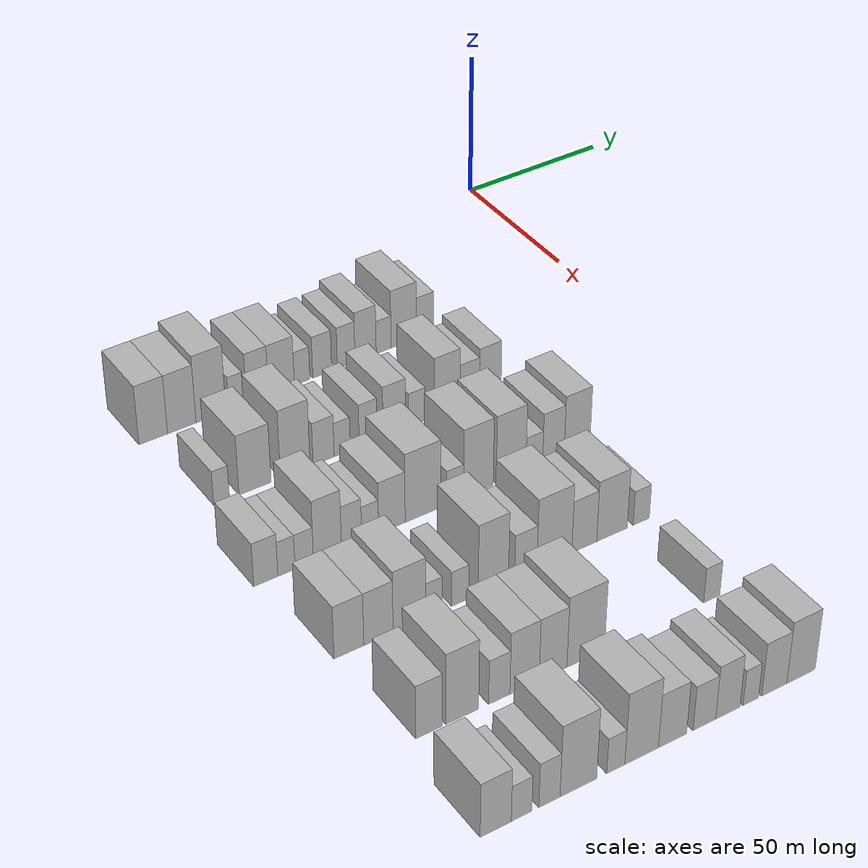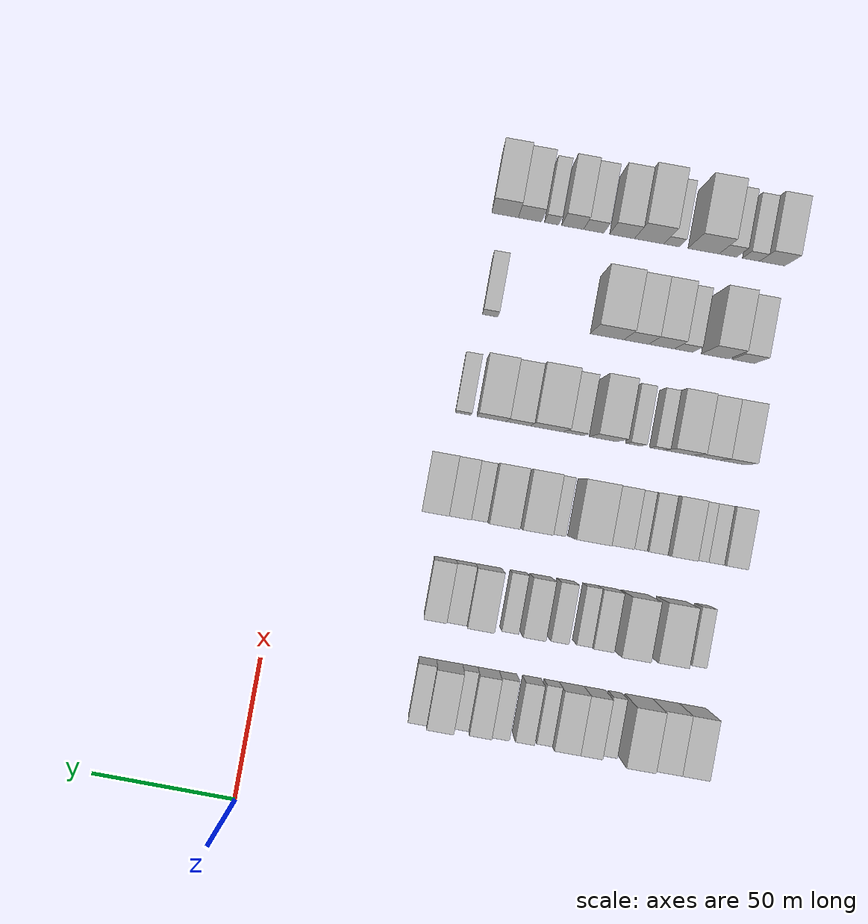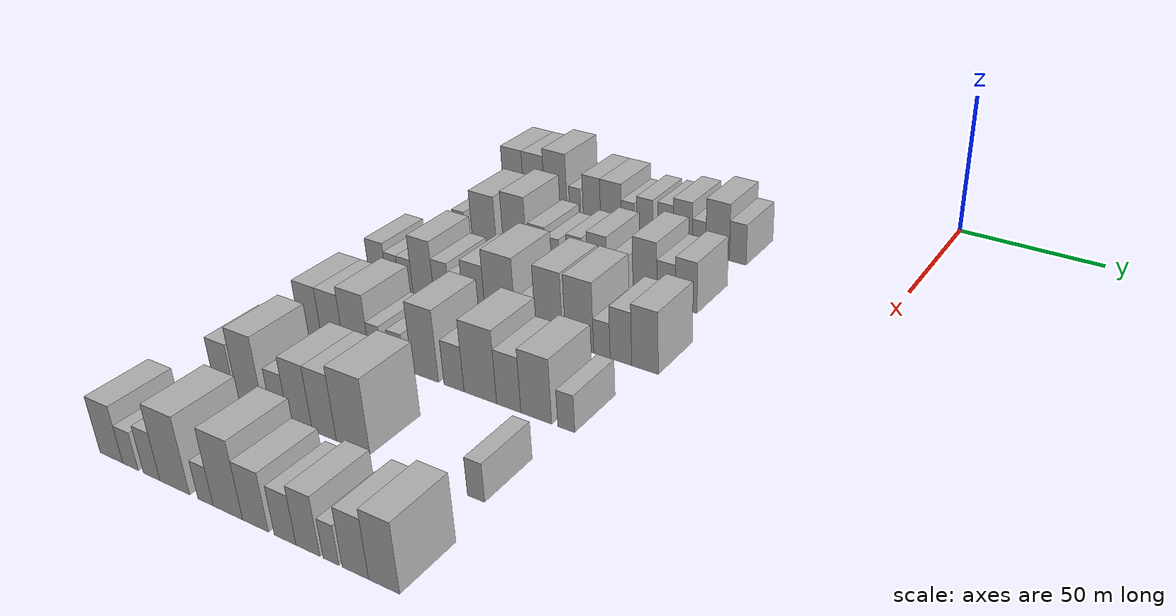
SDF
<sdf version="1.6">
 <world name="default">
  <model name="building_46">
   <static>1</static>
   <pose>50.0000 -149.4197 0 0.000000 0.000000 0.000000</pose>
   <link name="link">
    <pose>0 0 10.50 0 0 0</pose>
    <collision name="collision"><geometry><box><size>20.0000 9.1974 21.0000</size></box></geometry></collision>
    <visual name="visual">
     <cast_shadows>0</cast_shadows>
     <geometry><box><size>20.0000 9.1974 21.0000</size></box></geometry>
     <material>
      <script>
       <uri>model://HANNAS_wall/materials/scripts</uri>
       <uri>model://HANNAS_wall/materials/textures</uri>
       <name>vrc/HANNAS_wall</name>
      </script>
     </material>
    </visual>
   </link>
  </model>
  <model name="building_47">
   <static>1</static>
   <pose>50.0000 -140.1782 0 0.000000 0.000000 0.000000</pose>
   <link name="link">
    <pose>0 0 10.50 0 0 0</pose>
    <collision name="collision"><geometry><box><size>20.0000 9.2855 21.0000</size></box></geometry></collision>
    <visual name="visual">
     <cast_shadows>0</cast_shadows>
     <geometry><box><size>20.0000 9.2855 21.0000</size></box></geometry>
     <material>
      <script>
       <uri>model://HANNAS_wall/materials/scripts</uri>
       <uri>model://HANNAS_wall/materials/textures</uri>
       <name>vrc/HANNAS_wall</name>
      </script>
     </material>
    </visual>
   </link>
  </model>
  <model name="building_48">
   <static>1</static>
   <pose>50.0000 -130.6213 0 0.000000 0.000000 0.000000</pose>
   <link name="link">
    <pose>0 0 12.00 0 0 0</pose>
    <collision name="collision"><geometry><box><size>20.0000 9.8284 24.0000</size></box></geometry></collision>
    <visual name="visual">
     <cast_shadows>0</cast_shadows>
     <geometry><box><size>20.0000 9.8284 24.0000</size></box></geometry>
     <material>
      <script>
       <uri>model://HANNAS_wall/materials/scripts</uri>
       <uri>model://HANNAS_wall/materials/textures</uri>
       <name>vrc/HANNAS_wall</name>
      </script>
     </material>
    </visual>
   </link>
  </model>
  <model name="building_49">
   <static>1</static>
   <pose>50.0000 -122.2751 0 0.000000 0.000000 0.000000</pose>
   <link name="link">
    <pose>0 0 6.00 0 0 0</pose>
    <collision name="collision"><geometry><box><size>20.0000 4.8638 12.0000</size></box></geometry></collision>
    <visual name="visual">
     <cast_shadows>0</cast_shadows>
     <geometry><box><size>20.0000 4.8638 12.0000</size></box></geometry>
     <material>
      <script>
       <uri>model://HANNAS_wall/materials/scripts</uri>
       <uri>model://HANNAS_wall/materials/textures</uri>
       <name>vrc/HANNAS_wall</name>
      </script>
     </material>
    </visual>
   </link>
  </model>
  <model name="building_50">
   <static>1</static>
   <pose>50.0000 -115.1461 0 0.000000 0.000000 0.000000</pose>
   <link name="link">
    <pose>0 0 9.00 0 0 0</pose>
    <collision name="collision"><geometry><box><size>20.0000 7.3941 18.0000</size></box></geometry></collision>
    <visual name="visual">
     <cast_shadows>0</cast_shadows>
     <geometry><box><size>20.0000 7.3941 18.0000</size></box></geometry>
     <material>
      <script>
       <uri>model://HANNAS_wall/materials/scripts</uri>
       <uri>model://HANNAS_wall/materials/textures</uri>
       <name>vrc/HANNAS_wall</name>
      </script>
     </material>
    </visual>
   </link>
  </model>
  <model name="building_51">
   <static>1</static>
   <pose>50.0000 -107.0595 0 0.000000 0.000000 0.000000</pose>
   <link name="link">
    <pose>0 0 9.00 0 0 0</pose>
    <collision name="collision"><geometry><box><size>20.0000 8.7791 18.0000</size></box></geometry></collision>
    <visual name="visual">
     <cast_shadows>0</cast_shadows>
     <geometry><box><size>20.0000 8.7791 18.0000</size></box></geometry>
     <material>
      <script>
       <uri>model://HANNAS_wall/materials/scripts</uri>
       <uri>model://HANNAS_wall/materials/textures</uri>
       <name>vrc/HANNAS_wall</name>
      </script>
     </material>
    </visual>
   </link>
  </model>
  <model name="building_52">
   <static>1</static>
   <pose>50.0000 -100.0026 0 0.000000 0.000000 0.000000</pose>
   <link name="link">
    <pose>0 0 6.00 0 0 0</pose>
    <collision name="collision"><geometry><box><size>20.0000 5.3347 12.0000</size></box></geometry></collision>
    <visual name="visual">
     <cast_shadows>0</cast_shadows>
     <geometry><box><size>20.0000 5.3347 12.0000</size></box></geometry>
     <material>
      <script>
       <uri>model://HANNAS_wall/materials/scripts</uri>
       <uri>model://HANNAS_wall/materials/textures</uri>
       <name>vrc/HANNAS_wall</name>
      </script>
     </material>
    </visual>
   </link>
  </model>
  <model name="building_53">
   <static>1</static>
   <pose>50.0000 -93.0825 0 0.000000 0.000000 0.000000</pose>
   <link name="link">
    <pose>0 0 7.50 0 0 0</pose>
    <collision name="collision"><geometry><box><size>20.0000 6.5055 15.0000</size></box></geometry></collision>
    <visual name="visual">
     <cast_shadows>0</cast_shadows>
     <geometry><box><size>20.0000 6.5055 15.0000</size></box></geometry>
     <material>
      <script>
       <uri>model://HANNAS_wall/materials/scripts</uri>
       <uri>model://HANNAS_wall/materials/textures</uri>
       <name>vrc/HANNAS_wall</name>
      </script>
     </material>
    </visual>
   </link>
  </model>
  <model name="building_54">
   <static>1</static>
   <pose>50.0000 -84.7591 0 0.000000 0.000000 0.000000</pose>
   <link name="link">
    <pose>0 0 7.50 0 0 0</pose>
    <collision name="collision"><geometry><box><size>20.0000 6.1412 15.0000</size></box></geometry></collision>
    <visual name="visual">
     <cast_shadows>0</cast_shadows>
     <geometry><box><size>20.0000 6.1412 15.0000</size></box></geometry>
     <material>
      <script>
       <uri>model://HANNAS_wall/materials/scripts</uri>
       <uri>model://HANNAS_wall/materials/textures</uri>
       <name>vrc/HANNAS_wall</name>
      </script>
     </material>
    </visual>
   </link>
  </model>
  <model name="building_55">
   <static>1</static>
   <pose>50.0000 -77.9496 0 0.000000 0.000000 0.000000</pose>
   <link name="link">
    <pose>0 0 9.00 0 0 0</pose>
    <collision name="collision"><geometry><box><size>20.0000 7.4778 18.0000</size></box></geometry></collision>
    <visual name="visual">
     <cast_shadows>0</cast_shadows>
     <geometry><box><size>20.0000 7.4778 18.0000</size></box></geometry>
     <material>
      <script>
       <uri>model://HANNAS_wall/materials/scripts</uri>
       <uri>model://HANNAS_wall/materials/textures</uri>
       <name>vrc/HANNAS_wall</name>
      </script>
     </material>
    </visual>
   </link>
  </model>
  <model name="building_56">
   <static>1</static>
   <pose>50.0000 -71.5670 0 0.000000 0.000000 0.000000</pose>
   <link name="link">
    <pose>0 0 6.00 0 0 0</pose>
    <collision name="collision"><geometry><box><size>20.0000 5.2873 12.0000</size></box></geometry></collision>
    <visual name="visual">
     <cast_shadows>0</cast_shadows>
     <geometry><box><size>20.0000 5.2873 12.0000</size></box></geometry>
     <material>
      <script>
       <uri>model://HANNAS_wall/materials/scripts</uri>
       <uri>model://HANNAS_wall/materials/textures</uri>
       <name>vrc/HANNAS_wall</name>
      </script>
     </material>
    </visual>
   </link>
  </model>
  <model name="building_57">
   <static>1</static>
   <pose>50.0000 -64.4140 0 0.000000 0.000000 0.000000</pose>
   <link name="link">
    <pose>0 0 10.50 0 0 0</pose>
    <collision name="collision"><geometry><box><size>20.0000 9.0188 21.0000</size></box></geometry></collision>
    <visual name="visual">
     <cast_shadows>0</cast_shadows>
     <geometry><box><size>20.0000 9.0188 21.0000</size></box></geometry>
     <material>
      <script>
       <uri>model://HANNAS_wall/materials/scripts</uri>
       <uri>model://HANNAS_wall/materials/textures</uri>
       <name>vrc/HANNAS_wall</name>
      </script>
     </material>
    </visual>
   </link>
  </model>
  <model name="building_58">
   <static>1</static>
   <pose>50.0000 -56.7513 0 0.000000 0.000000 0.000000</pose>
   <link name="link">
    <pose>0 0 7.50 0 0 0</pose>
    <collision name="collision"><geometry><box><size>20.0000 6.3065 15.0000</size></box></geometry></collision>
    <visual name="visual">
     <cast_shadows>0</cast_shadows>
     <geometry><box><size>20.0000 6.3065 15.0000</size></box></geometry>
     <material>
      <script>
       <uri>model://HANNAS_wall/materials/scripts</uri>
       <uri>model://HANNAS_wall/materials/textures</uri>
       <name>vrc/HANNAS_wall</name>
      </script>
     </material>
    </visual>
   </link>
  </model>
  <model name="building_176">
   <static>1</static>
   <pose>85.0000 -146.3142 0 0.000000 0.000000 0.000000</pose>
   <link name="link">
    <pose>0 0 6.00 0 0 0</pose>
    <collision name="collision"><geometry><box><size>20.0000 5.0164 12.0000</size></box></geometry></collision>
    <visual name="visual">
     <cast_shadows>0</cast_shadows>
     <geometry><box><size>20.0000 5.0164 12.0000</size></box></geometry>
     <material>
      <script>
       <uri>model://HANNAS_wall/materials/scripts</uri>
       <uri>model://HANNAS_wall/materials/textures</uri>
       <name>vrc/HANNAS_wall</name>
      </script>
     </material>
    </visual>
   </link>
  </model>
  <model name="building_177">
   <static>1</static>
   <pose>85.0000 -135.6667 0 0.000000 0.000000 0.000000</pose>
   <link name="link">
    <pose>0 0 10.50 0 0 0</pose>
    <collision name="collision"><geometry><box><size>20.0000 10.2786 21.0000</size></box></geometry></collision>
    <visual name="visual">
     <cast_shadows>0</cast_shadows>
     <geometry><box><size>20.0000 10.2786 21.0000</size></box></geometry>
     <material>
      <script>
       <uri>model://HANNAS_wall/materials/scripts</uri>
       <uri>model://HANNAS_wall/materials/textures</uri>
       <name>vrc/HANNAS_wall</name>
      </script>
     </material>
    </visual>
   </link>
  </model>
  <model name="building_178">
   <static>1</static>
   <pose>85.0000 -122.6969 0 0.000000 0.000000 0.000000</pose>
   <link name="link">
    <pose>0 0 12.00 0 0 0</pose>
    <collision name="collision"><geometry><box><size>20.0000 9.6608 24.0000</size></box></geometry></collision>
    <visual name="visual">
     <cast_shadows>0</cast_shadows>
     <geometry><box><size>20.0000 9.6608 24.0000</size></box></geometry>
     <material>
      <script>
       <uri>model://HANNAS_wall/materials/scripts</uri>
       <uri>model://HANNAS_wall/materials/textures</uri>
       <name>vrc/HANNAS_wall</name>
      </script>
     </material>
    </visual>
   </link>
  </model>
  <model name="building_179">
   <static>1</static>
   <pose>85.0000 -113.3993 0 0.000000 0.000000 0.000000</pose>
   <link name="link">
    <pose>0 0 7.50 0 0 0</pose>
    <collision name="collision"><geometry><box><size>20.0000 6.9345 15.0000</size></box></geometry></collision>
    <visual name="visual">
     <cast_shadows>0</cast_shadows>
     <geometry><box><size>20.0000 6.9345 15.0000</size></box></geometry>
     <material>
      <script>
       <uri>model://HANNAS_wall/materials/scripts</uri>
       <uri>model://HANNAS_wall/materials/textures</uri>
       <name>vrc/HANNAS_wall</name>
      </script>
     </material>
    </visual>
   </link>
  </model>
  <model name="building_180">
   <static>1</static>
   <pose>85.0000 -107.2517 0 0.000000 0.000000 0.000000</pose>
   <link name="link">
    <pose>0 0 6.00 0 0 0</pose>
    <collision name="collision"><geometry><box><size>20.0000 5.3608 12.0000</size></box></geometry></collision>
    <visual name="visual">
     <cast_shadows>0</cast_shadows>
     <geometry><box><size>20.0000 5.3608 12.0000</size></box></geometry>
     <material>
      <script>
       <uri>model://HANNAS_wall/materials/scripts</uri>
       <uri>model://HANNAS_wall/materials/textures</uri>
       <name>vrc/HANNAS_wall</name>
      </script>
     </material>
    </visual>
   </link>
  </model>
  <model name="building_181">
   <static>1</static>
   <pose>85.0000 -98.5460 0 0.000000 0.000000 0.000000</pose>
   <link name="link">
    <pose>0 0 7.50 0 0 0</pose>
    <collision name="collision"><geometry><box><size>20.0000 6.0505 15.0000</size></box></geometry></collision>
    <visual name="visual">
     <cast_shadows>0</cast_shadows>
     <geometry><box><size>20.0000 6.0505 15.0000</size></box></geometry>
     <material>
      <script>
       <uri>model://HANNAS_wall/materials/scripts</uri>
       <uri>model://HANNAS_wall/materials/textures</uri>
       <name>vrc/HANNAS_wall</name>
      </script>
     </material>
    </visual>
   </link>
  </model>
  <model name="building_182">
   <static>1</static>
   <pose>85.0000 -89.7114 0 0.000000 0.000000 0.000000</pose>
   <link name="link">
    <pose>0 0 9.00 0 0 0</pose>
    <collision name="collision"><geometry><box><size>20.0000 7.6186 18.0000</size></box></geometry></collision>
    <visual name="visual">
     <cast_shadows>0</cast_shadows>
     <geometry><box><size>20.0000 7.6186 18.0000</size></box></geometry>
     <material>
      <script>
       <uri>model://HANNAS_wall/materials/scripts</uri>
       <uri>model://HANNAS_wall/materials/textures</uri>
       <name>vrc/HANNAS_wall</name>
      </script>
     </material>
    </visual>
   </link>
  </model>
  <model name="building_183">
   <static>1</static>
   <pose>85.0000 -82.0134 0 0.000000 0.000000 0.000000</pose>
   <link name="link">
    <pose>0 0 6.00 0 0 0</pose>
    <collision name="collision"><geometry><box><size>20.0000 5.7775 12.0000</size></box></geometry></collision>
    <visual name="visual">
     <cast_shadows>0</cast_shadows>
     <geometry><box><size>20.0000 5.7775 12.0000</size></box></geometry>
     <material>
      <script>
       <uri>model://HANNAS_wall/materials/scripts</uri>
       <uri>model://HANNAS_wall/materials/textures</uri>
       <name>vrc/HANNAS_wall</name>
      </script>
     </material>
    </visual>
   </link>
  </model>
  <model name="building_184">
   <static>1</static>
   <pose>85.0000 -71.6403 0 0.000000 0.000000 0.000000</pose>
   <link name="link">
    <pose>0 0 10.50 0 0 0</pose>
    <collision name="collision"><geometry><box><size>20.0000 8.9686 21.0000</size></box></geometry></collision>
    <visual name="visual">
     <cast_shadows>0</cast_shadows>
     <geometry><box><size>20.0000 8.9686 21.0000</size></box></geometry>
     <material>
      <script>
       <uri>model://HANNAS_wall/materials/scripts</uri>
       <uri>model://HANNAS_wall/materials/textures</uri>
       <name>vrc/HANNAS_wall</name>
      </script>
     </material>
    </visual>
   </link>
  </model>
  <model name="building_185">
   <static>1</static>
   <pose>85.0000 -63.7409 0 0.000000 0.000000 0.000000</pose>
   <link name="link">
    <pose>0 0 7.50 0 0 0</pose>
    <collision name="collision"><geometry><box><size>20.0000 6.8304 15.0000</size></box></geometry></collision>
    <visual name="visual">
     <cast_shadows>0</cast_shadows>
     <geometry><box><size>20.0000 6.8304 15.0000</size></box></geometry>
     <material>
      <script>
       <uri>model://HANNAS_wall/materials/scripts</uri>
       <uri>model://HANNAS_wall/materials/textures</uri>
       <name>vrc/HANNAS_wall</name>
      </script>
     </material>
    </visual>
   </link>
  </model>
  <model name="building_186">
   <static>1</static>
   <pose>85.0000 -56.4786 0 0.000000 0.000000 0.000000</pose>
   <link name="link">
    <pose>0 0 9.00 0 0 0</pose>
    <collision name="collision"><geometry><box><size>20.0000 7.6940 18.0000</size></box></geometry></collision>
    <visual name="visual">
     <cast_shadows>0</cast_shadows>
     <geometry><box><size>20.0000 7.6940 18.0000</size></box></geometry>
     <material>
      <script>
       <uri>model://HANNAS_wall/materials/scripts</uri>
       <uri>model://HANNAS_wall/materials/textures</uri>
       <name>vrc/HANNAS_wall</name>
      </script>
     </material>
    </visual>
   </link>
  </model>
  <model name="building_300">
   <static>1</static>
   <pose>120.0000 -152.1225 0 0.000000 0.000000 0.000000</pose>
   <link name="link">
    <pose>0 0 7.50 0 0 0</pose>
    <collision name="collision"><geometry><box><size>20.0000 7.3923 15.0000</size></box></geometry></collision>
    <visual name="visual">
     <cast_shadows>0</cast_shadows>
     <geometry><box><size>20.0000 7.3923 15.0000</size></box></geometry>
     <material>
      <script>
       <uri>model://HANNAS_wall/materials/scripts</uri>
       <uri>model://HANNAS_wall/materials/textures</uri>
       <name>vrc/HANNAS_wall</name>
      </script>
     </material>
    </visual>
   </link>
  </model>
  <model name="building_301">
   <static>1</static>
   <pose>120.0000 -145.7882 0 0.000000 0.000000 0.000000</pose>
   <link name="link">
    <pose>0 0 6.00 0 0 0</pose>
    <collision name="collision"><geometry><box><size>20.0000 5.2762 12.0000</size></box></geometry></collision>
    <visual name="visual">
     <cast_shadows>0</cast_shadows>
     <geometry><box><size>20.0000 5.2762 12.0000</size></box></geometry>
     <material>
      <script>
       <uri>model://HANNAS_wall/materials/scripts</uri>
       <uri>model://HANNAS_wall/materials/textures</uri>
       <name>vrc/HANNAS_wall</name>
      </script>
     </material>
    </visual>
   </link>
  </model>
  <model name="building_302">
   <static>1</static>
   <pose>120.0000 -140.2771 0 0.000000 0.000000 0.000000</pose>
   <link name="link">
    <pose>0 0 6.00 0 0 0</pose>
    <collision name="collision"><geometry><box><size>20.0000 5.7461 12.0000</size></box></geometry></collision>
    <visual name="visual">
     <cast_shadows>0</cast_shadows>
     <geometry><box><size>20.0000 5.7461 12.0000</size></box></geometry>
     <material>
      <script>
       <uri>model://HANNAS_wall/materials/scripts</uri>
       <uri>model://HANNAS_wall/materials/textures</uri>
       <name>vrc/HANNAS_wall</name>
      </script>
     </material>
    </visual>
   </link>
  </model>
  <model name="building_303">
   <static>1</static>
   <pose>120.0000 -133.0049 0 0.000000 0.000000 0.000000</pose>
   <link name="link">
    <pose>0 0 10.50 0 0 0</pose>
    <collision name="collision"><geometry><box><size>20.0000 8.7983 21.0000</size></box></geometry></collision>
    <visual name="visual">
     <cast_shadows>0</cast_shadows>
     <geometry><box><size>20.0000 8.7983 21.0000</size></box></geometry>
     <material>
      <script>
       <uri>model://HANNAS_wall/materials/scripts</uri>
       <uri>model://HANNAS_wall/materials/textures</uri>
       <name>vrc/HANNAS_wall</name>
      </script>
     </material>
    </visual>
   </link>
  </model>
  <model name="building_304">
   <static>1</static>
   <pose>120.0000 -125.4144 0 0.000000 0.000000 0.000000</pose>
   <link name="link">
    <pose>0 0 7.50 0 0 0</pose>
    <collision name="collision"><geometry><box><size>20.0000 6.3827 15.0000</size></box></geometry></collision>
    <visual name="visual">
     <cast_shadows>0</cast_shadows>
     <geometry><box><size>20.0000 6.3827 15.0000</size></box></geometry>
     <material>
      <script>
       <uri>model://HANNAS_wall/materials/scripts</uri>
       <uri>model://HANNAS_wall/materials/textures</uri>
       <name>vrc/HANNAS_wall</name>
      </script>
     </material>
    </visual>
   </link>
  </model>
  <model name="building_305">
   <static>1</static>
   <pose>120.0000 -119.4960 0 0.000000 0.000000 0.000000</pose>
   <link name="link">
    <pose>0 0 6.00 0 0 0</pose>
    <collision name="collision"><geometry><box><size>20.0000 5.4543 12.0000</size></box></geometry></collision>
    <visual name="visual">
     <cast_shadows>0</cast_shadows>
     <geometry><box><size>20.0000 5.4543 12.0000</size></box></geometry>
     <material>
      <script>
       <uri>model://HANNAS_wall/materials/scripts</uri>
       <uri>model://HANNAS_wall/materials/textures</uri>
       <name>vrc/HANNAS_wall</name>
      </script>
     </material>
    </visual>
   </link>
  </model>
  <model name="building_306">
   <static>1</static>
   <pose>120.0000 -112.4906 0 0.000000 0.000000 0.000000</pose>
   <link name="link">
    <pose>0 0 9.00 0 0 0</pose>
    <collision name="collision"><geometry><box><size>20.0000 8.5564 18.0000</size></box></geometry></collision>
    <visual name="visual">
     <cast_shadows>0</cast_shadows>
     <geometry><box><size>20.0000 8.5564 18.0000</size></box></geometry>
     <material>
      <script>
       <uri>model://HANNAS_wall/materials/scripts</uri>
       <uri>model://HANNAS_wall/materials/textures</uri>
       <name>vrc/HANNAS_wall</name>
      </script>
     </material>
    </visual>
   </link>
  </model>
  <model name="building_307">
   <static>1</static>
   <pose>120.0000 -102.4163 0 0.000000 0.000000 0.000000</pose>
   <link name="link">
    <pose>0 0 12.00 0 0 0</pose>
    <collision name="collision"><geometry><box><size>20.0000 11.5923 24.0000</size></box></geometry></collision>
    <visual name="visual">
     <cast_shadows>0</cast_shadows>
     <geometry><box><size>20.0000 11.5923 24.0000</size></box></geometry>
     <material>
      <script>
       <uri>model://HANNAS_wall/materials/scripts</uri>
       <uri>model://HANNAS_wall/materials/textures</uri>
       <name>vrc/HANNAS_wall</name>
      </script>
     </material>
    </visual>
   </link>
  </model>
  <model name="building_308">
   <static>1</static>
   <pose>120.0000 -91.8243 0 0.000000 0.000000 0.000000</pose>
   <link name="link">
    <pose>0 0 6.00 0 0 0</pose>
    <collision name="collision"><geometry><box><size>20.0000 5.5917 12.0000</size></box></geometry></collision>
    <visual name="visual">
     <cast_shadows>0</cast_shadows>
     <geometry><box><size>20.0000 5.5917 12.0000</size></box></geometry>
     <material>
      <script>
       <uri>model://HANNAS_wall/materials/scripts</uri>
       <uri>model://HANNAS_wall/materials/textures</uri>
       <name>vrc/HANNAS_wall</name>
      </script>
     </material>
    </visual>
   </link>
  </model>
  <model name="building_309">
   <static>1</static>
   <pose>120.0000 -84.0433 0 0.000000 0.000000 0.000000</pose>
   <link name="link">
    <pose>0 0 12.00 0 0 0</pose>
    <collision name="collision"><geometry><box><size>20.0000 9.9702 24.0000</size></box></geometry></collision>
    <visual name="visual">
     <cast_shadows>0</cast_shadows>
     <geometry><box><size>20.0000 9.9702 24.0000</size></box></geometry>
     <material>
      <script>
       <uri>model://HANNAS_wall/materials/scripts</uri>
       <uri>model://HANNAS_wall/materials/textures</uri>
       <name>vrc/HANNAS_wall</name>
      </script>
     </material>
    </visual>
   </link>
  </model>
  <model name="building_310">
   <static>1</static>
   <pose>120.0000 -73.0208 0 0.000000 0.000000 0.000000</pose>
   <link name="link">
    <pose>0 0 12.00 0 0 0</pose>
    <collision name="collision"><geometry><box><size>20.0000 10.0749 24.0000</size></box></geometry></collision>
    <visual name="visual">
     <cast_shadows>0</cast_shadows>
     <geometry><box><size>20.0000 10.0749 24.0000</size></box></geometry>
     <material>
      <script>
       <uri>model://HANNAS_wall/materials/scripts</uri>
       <uri>model://HANNAS_wall/materials/textures</uri>
       <name>vrc/HANNAS_wall</name>
      </script>
     </material>
    </visual>
   </link>
  </model>
  <model name="building_311">
   <static>1</static>
   <pose>120.0000 -65.0954 0 0.000000 0.000000 0.000000</pose>
   <link name="link">
    <pose>0 0 6.00 0 0 0</pose>
    <collision name="collision"><geometry><box><size>20.0000 5.7759 12.0000</size></box></geometry></collision>
    <visual name="visual">
     <cast_shadows>0</cast_shadows>
     <geometry><box><size>20.0000 5.7759 12.0000</size></box></geometry>
     <material>
      <script>
       <uri>model://HANNAS_wall/materials/scripts</uri>
       <uri>model://HANNAS_wall/materials/textures</uri>
       <name>vrc/HANNAS_wall</name>
      </script>
     </material>
    </visual>
   </link>
  </model>
  <model name="building_312">
   <static>1</static>
   <pose>120.0000 -58.4692 0 0.000000 0.000000 0.000000</pose>
   <link name="link">
    <pose>0 0 9.00 0 0 0</pose>
    <collision name="collision"><geometry><box><size>20.0000 7.4765 18.0000</size></box></geometry></collision>
    <visual name="visual">
     <cast_shadows>0</cast_shadows>
     <geometry><box><size>20.0000 7.4765 18.0000</size></box></geometry>
     <material>
      <script>
       <uri>model://HANNAS_wall/materials/scripts</uri>
       <uri>model://HANNAS_wall/materials/textures</uri>
       <name>vrc/HANNAS_wall</name>
      </script>
     </material>
    </visual>
   </link>
  </model>
  <model name="building_313">
   <static>1</static>
   <pose>120.0000 -50.2048 0 0.000000 0.000000 0.000000</pose>
   <link name="link">
    <pose>0 0 10.50 0 0 0</pose>
    <collision name="collision"><geometry><box><size>20.0000 9.0522 21.0000</size></box></geometry></collision>
    <visual name="visual">
     <cast_shadows>0</cast_shadows>
     <geometry><box><size>20.0000 9.0522 21.0000</size></box></geometry>
     <material>
      <script>
       <uri>model://HANNAS_wall/materials/scripts</uri>
       <uri>model://HANNAS_wall/materials/textures</uri>
       <name>vrc/HANNAS_wall</name>
      </script>
     </material>
    </visual>
   </link>
  </model>
  <model name="building_415">
   <static>1</static>
   <pose>155.0000 -147.4806 0 0.000000 0.000000 0.000000</pose>
   <link name="link">
    <pose>0 0 9.00 0 0 0</pose>
    <collision name="collision"><geometry><box><size>20.0000 8.9582 18.0000</size></box></geometry></collision>
    <visual name="visual">
     <cast_shadows>0</cast_shadows>
     <geometry><box><size>20.0000 8.9582 18.0000</size></box></geometry>
     <material>
      <script>
       <uri>model://HANNAS_wall/materials/scripts</uri>
       <uri>model://HANNAS_wall/materials/textures</uri>
       <name>vrc/HANNAS_wall</name>
      </script>
     </material>
    </visual>
   </link>
  </model>
  <model name="building_416">
   <static>1</static>
   <pose>155.0000 -138.5435 0 0.000000 0.000000 0.000000</pose>
   <link name="link">
    <pose>0 0 9.00 0 0 0</pose>
    <collision name="collision"><geometry><box><size>20.0000 8.9158 18.0000</size></box></geometry></collision>
    <visual name="visual">
     <cast_shadows>0</cast_shadows>
     <geometry><box><size>20.0000 8.9158 18.0000</size></box></geometry>
     <material>
      <script>
       <uri>model://HANNAS_wall/materials/scripts</uri>
       <uri>model://HANNAS_wall/materials/textures</uri>
       <name>vrc/HANNAS_wall</name>
      </script>
     </material>
    </visual>
   </link>
  </model>
  <model name="building_417">
   <static>1</static>
   <pose>155.0000 -129.0079 0 0.000000 0.000000 0.000000</pose>
   <link name="link">
    <pose>0 0 10.50 0 0 0</pose>
    <collision name="collision"><geometry><box><size>20.0000 10.1553 21.0000</size></box></geometry></collision>
    <visual name="visual">
     <cast_shadows>0</cast_shadows>
     <geometry><box><size>20.0000 10.1553 21.0000</size></box></geometry>
     <material>
      <script>
       <uri>model://HANNAS_wall/materials/scripts</uri>
       <uri>model://HANNAS_wall/materials/textures</uri>
       <name>vrc/HANNAS_wall</name>
      </script>
     </material>
    </visual>
   </link>
  </model>
  <model name="building_418">
   <static>1</static>
   <pose>155.0000 -121.4232 0 0.000000 0.000000 0.000000</pose>
   <link name="link">
    <pose>0 0 6.00 0 0 0</pose>
    <collision name="collision"><geometry><box><size>20.0000 5.0142 12.0000</size></box></geometry></collision>
    <visual name="visual">
     <cast_shadows>0</cast_shadows>
     <geometry><box><size>20.0000 5.0142 12.0000</size></box></geometry>
     <material>
      <script>
       <uri>model://HANNAS_wall/materials/scripts</uri>
       <uri>model://HANNAS_wall/materials/textures</uri>
       <name>vrc/HANNAS_wall</name>
      </script>
     </material>
    </visual>
   </link>
  </model>
  <model name="building_419">
   <static>1</static>
   <pose>155.0000 -113.2245 0 0.000000 0.000000 0.000000</pose>
   <link name="link">
    <pose>0 0 6.00 0 0 0</pose>
    <collision name="collision"><geometry><box><size>20.0000 5.3832 12.0000</size></box></geometry></collision>
    <visual name="visual">
     <cast_shadows>0</cast_shadows>
     <geometry><box><size>20.0000 5.3832 12.0000</size></box></geometry>
     <material>
      <script>
       <uri>model://HANNAS_wall/materials/scripts</uri>
       <uri>model://HANNAS_wall/materials/textures</uri>
       <name>vrc/HANNAS_wall</name>
      </script>
     </material>
    </visual>
   </link>
  </model>
  <model name="building_420">
   <static>1</static>
   <pose>155.0000 -102.6841 0 0.000000 0.000000 0.000000</pose>
   <link name="link">
    <pose>0 0 12.00 0 0 0</pose>
    <collision name="collision"><geometry><box><size>20.0000 9.6976 24.0000</size></box></geometry></collision>
    <visual name="visual">
     <cast_shadows>0</cast_shadows>
     <geometry><box><size>20.0000 9.6976 24.0000</size></box></geometry>
     <material>
      <script>
       <uri>model://HANNAS_wall/materials/scripts</uri>
       <uri>model://HANNAS_wall/materials/textures</uri>
       <name>vrc/HANNAS_wall</name>
      </script>
     </material>
    </visual>
   </link>
  </model>
  <model name="building_421">
   <static>1</static>
   <pose>155.0000 -92.2268 0 0.000000 0.000000 0.000000</pose>
   <link name="link">
    <pose>0 0 7.50 0 0 0</pose>
    <collision name="collision"><geometry><box><size>20.0000 7.2170 15.0000</size></box></geometry></collision>
    <visual name="visual">
     <cast_shadows>0</cast_shadows>
     <geometry><box><size>20.0000 7.2170 15.0000</size></box></geometry>
     <material>
      <script>
       <uri>model://HANNAS_wall/materials/scripts</uri>
       <uri>model://HANNAS_wall/materials/textures</uri>
       <name>vrc/HANNAS_wall</name>
      </script>
     </material>
    </visual>
   </link>
  </model>
  <model name="building_422">
   <static>1</static>
   <pose>155.0000 -82.8683 0 0.000000 0.000000 0.000000</pose>
   <link name="link">
    <pose>0 0 12.00 0 0 0</pose>
    <collision name="collision"><geometry><box><size>20.0000 11.4999 24.0000</size></box></geometry></collision>
    <visual name="visual">
     <cast_shadows>0</cast_shadows>
     <geometry><box><size>20.0000 11.4999 24.0000</size></box></geometry>
     <material>
      <script>
       <uri>model://HANNAS_wall/materials/scripts</uri>
       <uri>model://HANNAS_wall/materials/textures</uri>
       <name>vrc/HANNAS_wall</name>
      </script>
     </material>
    </visual>
   </link>
  </model>
  <model name="building_423">
   <static>1</static>
   <pose>155.0000 -72.9529 0 0.000000 0.000000 0.000000</pose>
   <link name="link">
    <pose>0 0 9.00 0 0 0</pose>
    <collision name="collision"><geometry><box><size>20.0000 8.3310 18.0000</size></box></geometry></collision>
    <visual name="visual">
     <cast_shadows>0</cast_shadows>
     <geometry><box><size>20.0000 8.3310 18.0000</size></box></geometry>
     <material>
      <script>
       <uri>model://HANNAS_wall/materials/scripts</uri>
       <uri>model://HANNAS_wall/materials/textures</uri>
       <name>vrc/HANNAS_wall</name>
      </script>
     </material>
    </visual>
   </link>
  </model>
  <model name="building_424">
   <static>1</static>
   <pose>155.0000 -63.6113 0 0.000000 0.000000 0.000000</pose>
   <link name="link">
    <pose>0 0 10.50 0 0 0</pose>
    <collision name="collision"><geometry><box><size>20.0000 10.3523 21.0000</size></box></geometry></collision>
    <visual name="visual">
     <cast_shadows>0</cast_shadows>
     <geometry><box><size>20.0000 10.3523 21.0000</size></box></geometry>
     <material>
      <script>
       <uri>model://HANNAS_wall/materials/scripts</uri>
       <uri>model://HANNAS_wall/materials/textures</uri>
       <name>vrc/HANNAS_wall</name>
      </script>
     </material>
    </visual>
   </link>
  </model>
  <model name="building_425">
   <static>1</static>
   <pose>155.0000 -53.6621 0 0.000000 0.000000 0.000000</pose>
   <link name="link">
    <pose>0 0 6.00 0 0 0</pose>
    <collision name="collision"><geometry><box><size>20.0000 5.5461 12.0000</size></box></geometry></collision>
    <visual name="visual">
     <cast_shadows>0</cast_shadows>
     <geometry><box><size>20.0000 5.5461 12.0000</size></box></geometry>
     <material>
      <script>
       <uri>model://HANNAS_wall/materials/scripts</uri>
       <uri>model://HANNAS_wall/materials/textures</uri>
       <name>vrc/HANNAS_wall</name>
      </script>
     </material>
    </visual>
   </link>
  </model>
  <model name="building_542">
   <static>1</static>
   <pose>190.0000 -145.5111 0 0.000000 0.000000 0.000000</pose>
   <link name="link">
    <pose>0 0 9.00 0 0 0</pose>
    <collision name="collision"><geometry><box><size>20.0000 7.8854 18.0000</size></box></geometry></collision>
    <visual name="visual">
     <cast_shadows>0</cast_shadows>
     <geometry><box><size>20.0000 7.8854 18.0000</size></box></geometry>
     <material>
      <script>
       <uri>model://HANNAS_wall/materials/scripts</uri>
       <uri>model://HANNAS_wall/materials/textures</uri>
       <name>vrc/HANNAS_wall</name>
      </script>
     </material>
    </visual>
   </link>
  </model>
  <model name="building_543">
   <static>1</static>
   <pose>190.0000 -135.6880 0 0.000000 0.000000 0.000000</pose>
   <link name="link">
    <pose>0 0 12.00 0 0 0</pose>
    <collision name="collision"><geometry><box><size>20.0000 9.7607 24.0000</size></box></geometry></collision>
    <visual name="visual">
     <cast_shadows>0</cast_shadows>
     <geometry><box><size>20.0000 9.7607 24.0000</size></box></geometry>
     <material>
      <script>
       <uri>model://HANNAS_wall/materials/scripts</uri>
       <uri>model://HANNAS_wall/materials/textures</uri>
       <name>vrc/HANNAS_wall</name>
      </script>
     </material>
    </visual>
   </link>
  </model>
  <model name="building_544">
   <static>1</static>
   <pose>190.0000 -124.5774 0 0.000000 0.000000 0.000000</pose>
   <link name="link">
    <pose>0 0 7.50 0 0 0</pose>
    <collision name="collision"><geometry><box><size>20.0000 6.4606 15.0000</size></box></geometry></collision>
    <visual name="visual">
     <cast_shadows>0</cast_shadows>
     <geometry><box><size>20.0000 6.4606 15.0000</size></box></geometry>
     <material>
      <script>
       <uri>model://HANNAS_wall/materials/scripts</uri>
       <uri>model://HANNAS_wall/materials/textures</uri>
       <name>vrc/HANNAS_wall</name>
      </script>
     </material>
    </visual>
   </link>
  </model>
  <model name="building_545">
   <static>1</static>
   <pose>190.0000 -116.8649 0 0.000000 0.000000 0.000000</pose>
   <link name="link">
    <pose>0 0 10.50 0 0 0</pose>
    <collision name="collision"><geometry><box><size>20.0000 8.9644 21.0000</size></box></geometry></collision>
    <visual name="visual">
     <cast_shadows>0</cast_shadows>
     <geometry><box><size>20.0000 8.9644 21.0000</size></box></geometry>
     <material>
      <script>
       <uri>model://HANNAS_wall/materials/scripts</uri>
       <uri>model://HANNAS_wall/materials/textures</uri>
       <name>vrc/HANNAS_wall</name>
      </script>
     </material>
    </visual>
   </link>
  </model>
  <model name="building_546">
   <static>1</static>
   <pose>190.0000 -108.0441 0 0.000000 0.000000 0.000000</pose>
   <link name="link">
    <pose>0 0 10.50 0 0 0</pose>
    <collision name="collision"><geometry><box><size>20.0000 8.6772 21.0000</size></box></geometry></collision>
    <visual name="visual">
     <cast_shadows>0</cast_shadows>
     <geometry><box><size>20.0000 8.6772 21.0000</size></box></geometry>
     <material>
      <script>
       <uri>model://HANNAS_wall/materials/scripts</uri>
       <uri>model://HANNAS_wall/materials/textures</uri>
       <name>vrc/HANNAS_wall</name>
      </script>
     </material>
    </visual>
   </link>
  </model>
  <model name="building_547">
   <static>1</static>
   <pose>190.0000 -97.7813 0 0.000000 0.000000 0.000000</pose>
   <link name="link">
    <pose>0 0 12.00 0 0 0</pose>
    <collision name="collision"><geometry><box><size>20.0000 11.8485 24.0000</size></box></geometry></collision>
    <visual name="visual">
     <cast_shadows>0</cast_shadows>
     <geometry><box><size>20.0000 11.8485 24.0000</size></box></geometry>
     <material>
      <script>
       <uri>model://HANNAS_wall/materials/scripts</uri>
       <uri>model://HANNAS_wall/materials/textures</uri>
       <name>vrc/HANNAS_wall</name>
      </script>
     </material>
    </visual>
   </link>
  </model>
  <model name="building_548">
   <static>1</static>
   <pose>190.0000 -56.7724 0 0.000000 0.000000 0.000000</pose>
   <link name="link">
    <pose>0 0 6.00 0 0 0</pose>
    <collision name="collision"><geometry><box><size>20.0000 5.3897 12.0000</size></box></geometry></collision>
    <visual name="visual">
     <cast_shadows>0</cast_shadows>
     <geometry><box><size>20.0000 5.3897 12.0000</size></box></geometry>
     <material>
      <script>
       <uri>model://HANNAS_wall/materials/scripts</uri>
       <uri>model://HANNAS_wall/materials/textures</uri>
       <name>vrc/HANNAS_wall</name>
      </script>
     </material>
    </visual>
   </link>
  </model>
  <model name="building_668">
   <static>1</static>
   <pose>225.0000 -149.3475 0 0.000000 0.000000 0.000000</pose>
   <link name="link">
    <pose>0 0 9.00 0 0 0</pose>
    <collision name="collision"><geometry><box><size>20.0000 8.9109 18.0000</size></box></geometry></collision>
    <visual name="visual">
     <cast_shadows>0</cast_shadows>
     <geometry><box><size>20.0000 8.9109 18.0000</size></box></geometry>
     <material>
      <script>
       <uri>model://HANNAS_wall/materials/scripts</uri>
       <uri>model://HANNAS_wall/materials/textures</uri>
       <name>vrc/HANNAS_wall</name>
      </script>
     </material>
    </visual>
   </link>
  </model>
  <model name="building_669">
   <static>1</static>
   <pose>225.0000 -141.9059 0 0.000000 0.000000 0.000000</pose>
   <link name="link">
    <pose>0 0 6.00 0 0 0</pose>
    <collision name="collision"><geometry><box><size>20.0000 5.9722 12.0000</size></box></geometry></collision>
    <visual name="visual">
     <cast_shadows>0</cast_shadows>
     <geometry><box><size>20.0000 5.9722 12.0000</size></box></geometry>
     <material>
      <script>
       <uri>model://HANNAS_wall/materials/scripts</uri>
       <uri>model://HANNAS_wall/materials/textures</uri>
       <name>vrc/HANNAS_wall</name>
      </script>
     </material>
    </visual>
   </link>
  </model>
  <model name="building_670">
   <static>1</static>
   <pose>225.0000 -133.8225 0 0.000000 0.000000 0.000000</pose>
   <link name="link">
    <pose>0 0 7.50 0 0 0</pose>
    <collision name="collision"><geometry><box><size>20.0000 6.1947 15.0000</size></box></geometry></collision>
    <visual name="visual">
     <cast_shadows>0</cast_shadows>
     <geometry><box><size>20.0000 6.1947 15.0000</size></box></geometry>
     <material>
      <script>
       <uri>model://HANNAS_wall/materials/scripts</uri>
       <uri>model://HANNAS_wall/materials/textures</uri>
       <name>vrc/HANNAS_wall</name>
      </script>
     </material>
    </visual>
   </link>
  </model>
  <model name="building_671">
   <static>1</static>
   <pose>225.0000 -125.2671 0 0.000000 0.000000 0.000000</pose>
   <link name="link">
    <pose>0 0 12.00 0 0 0</pose>
    <collision name="collision"><geometry><box><size>20.0000 10.9161 24.0000</size></box></geometry></collision>
    <visual name="visual">
     <cast_shadows>0</cast_shadows>
     <geometry><box><size>20.0000 10.9161 24.0000</size></box></geometry>
     <material>
      <script>
       <uri>model://HANNAS_wall/materials/scripts</uri>
       <uri>model://HANNAS_wall/materials/textures</uri>
       <name>vrc/HANNAS_wall</name>
      </script>
     </material>
    </visual>
   </link>
  </model>
  <model name="building_672">
   <static>1</static>
   <pose>225.0000 -114.0891 0 0.000000 0.000000 0.000000</pose>
   <link name="link">
    <pose>0 0 6.00 0 0 0</pose>
    <collision name="collision"><geometry><box><size>20.0000 5.4400 12.0000</size></box></geometry></collision>
    <visual name="visual">
     <cast_shadows>0</cast_shadows>
     <geometry><box><size>20.0000 5.4400 12.0000</size></box></geometry>
     <material>
      <script>
       <uri>model://HANNAS_wall/materials/scripts</uri>
       <uri>model://HANNAS_wall/materials/textures</uri>
       <name>vrc/HANNAS_wall</name>
      </script>
     </material>
    </visual>
   </link>
  </model>
  <model name="building_673">
   <static>1</static>
   <pose>225.0000 -106.2274 0 0.000000 0.000000 0.000000</pose>
   <link name="link">
    <pose>0 0 12.00 0 0 0</pose>
    <collision name="collision"><geometry><box><size>20.0000 10.2834 24.0000</size></box></geometry></collision>
    <visual name="visual">
     <cast_shadows>0</cast_shadows>
     <geometry><box><size>20.0000 10.2834 24.0000</size></box></geometry>
     <material>
      <script>
       <uri>model://HANNAS_wall/materials/scripts</uri>
       <uri>model://HANNAS_wall/materials/textures</uri>
       <name>vrc/HANNAS_wall</name>
      </script>
     </material>
    </visual>
   </link>
  </model>
  <model name="building_674">
   <static>1</static>
   <pose>225.0000 -96.7073 0 0.000000 0.000000 0.000000</pose>
   <link name="link">
    <pose>0 0 9.00 0 0 0</pose>
    <collision name="collision"><geometry><box><size>20.0000 8.7566 18.0000</size></box></geometry></collision>
    <visual name="visual">
     <cast_shadows>0</cast_shadows>
     <geometry><box><size>20.0000 8.7566 18.0000</size></box></geometry>
     <material>
      <script>
       <uri>model://HANNAS_wall/materials/scripts</uri>
       <uri>model://HANNAS_wall/materials/textures</uri>
       <name>vrc/HANNAS_wall</name>
      </script>
     </material>
    </visual>
   </link>
  </model>
  <model name="building_675">
   <static>1</static>
   <pose>225.0000 -86.7674 0 0.000000 0.000000 0.000000</pose>
   <link name="link">
    <pose>0 0 7.50 0 0 0</pose>
    <collision name="collision"><geometry><box><size>20.0000 7.1231 15.0000</size></box></geometry></collision>
    <visual name="visual">
     <cast_shadows>0</cast_shadows>
     <geometry><box><size>20.0000 7.1231 15.0000</size></box></geometry>
     <material>
      <script>
       <uri>model://HANNAS_wall/materials/scripts</uri>
       <uri>model://HANNAS_wall/materials/textures</uri>
       <name>vrc/HANNAS_wall</name>
      </script>
     </material>
    </visual>
   </link>
  </model>
  <model name="building_676">
   <static>1</static>
   <pose>225.0000 -79.3456 0 0.000000 0.000000 0.000000</pose>
   <link name="link">
    <pose>0 0 9.00 0 0 0</pose>
    <collision name="collision"><geometry><box><size>20.0000 7.7205 18.0000</size></box></geometry></collision>
    <visual name="visual">
     <cast_shadows>0</cast_shadows>
     <geometry><box><size>20.0000 7.7205 18.0000</size></box></geometry>
     <material>
      <script>
       <uri>model://HANNAS_wall/materials/scripts</uri>
       <uri>model://HANNAS_wall/materials/textures</uri>
       <name>vrc/HANNAS_wall</name>
      </script>
     </material>
    </visual>
   </link>
  </model>
  <model name="building_677">
   <static>1</static>
   <pose>225.0000 -71.9887 0 0.000000 0.000000 0.000000</pose>
   <link name="link">
    <pose>0 0 6.00 0 0 0</pose>
    <collision name="collision"><geometry><box><size>20.0000 4.9934 12.0000</size></box></geometry></collision>
    <visual name="visual">
     <cast_shadows>0</cast_shadows>
     <geometry><box><size>20.0000 4.9934 12.0000</size></box></geometry>
     <material>
      <script>
       <uri>model://HANNAS_wall/materials/scripts</uri>
       <uri>model://HANNAS_wall/materials/textures</uri>
       <name>vrc/HANNAS_wall</name>
      </script>
     </material>
    </visual>
   </link>
  </model>
  <model name="building_678">
   <static>1</static>
   <pose>225.0000 -64.4118 0 0.000000 0.000000 0.000000</pose>
   <link name="link">
    <pose>0 0 9.00 0 0 0</pose>
    <collision name="collision"><geometry><box><size>20.0000 8.1602 18.0000</size></box></geometry></collision>
    <visual name="visual">
     <cast_shadows>0</cast_shadows>
     <geometry><box><size>20.0000 8.1602 18.0000</size></box></geometry>
     <material>
      <script>
       <uri>model://HANNAS_wall/materials/scripts</uri>
       <uri>model://HANNAS_wall/materials/textures</uri>
       <name>vrc/HANNAS_wall</name>
      </script>
     </material>
    </visual>
   </link>
  </model>
  <model name="building_679">
   <static>1</static>
   <pose>225.0000 -55.6739 0 0.000000 0.000000 0.000000</pose>
   <link name="link">
    <pose>0 0 10.50 0 0 0</pose>
    <collision name="collision"><geometry><box><size>20.0000 9.3157 21.0000</size></box></geometry></collision>
    <visual name="visual">
     <cast_shadows>0</cast_shadows>
     <geometry><box><size>20.0000 9.3157 21.0000</size></box></geometry>
     <material>
      <script>
       <uri>model://HANNAS_wall/materials/scripts</uri>
       <uri>model://HANNAS_wall/materials/textures</uri>
       <name>vrc/HANNAS_wall</name>
      </script>
     </material>
    </visual>
   </link>
  </model>
 </world>
</sdf>
